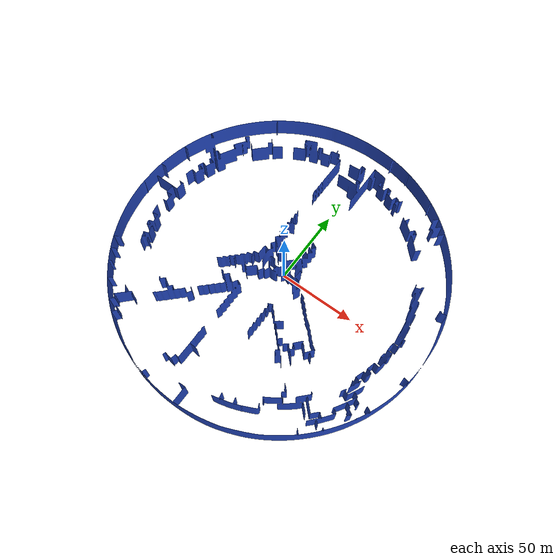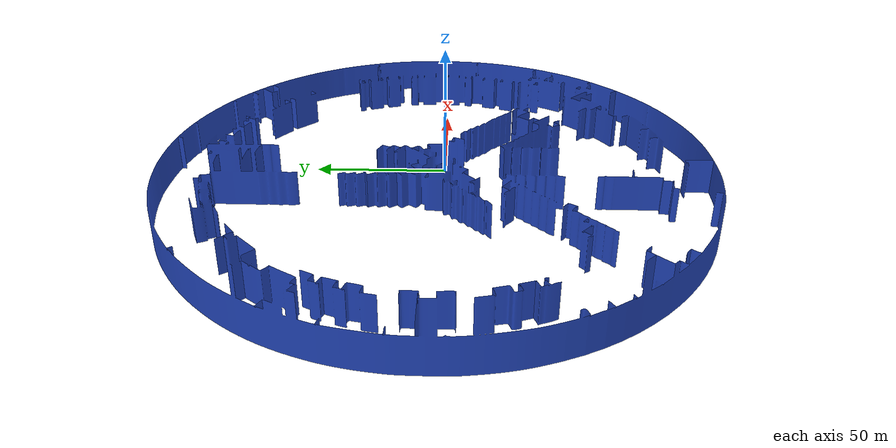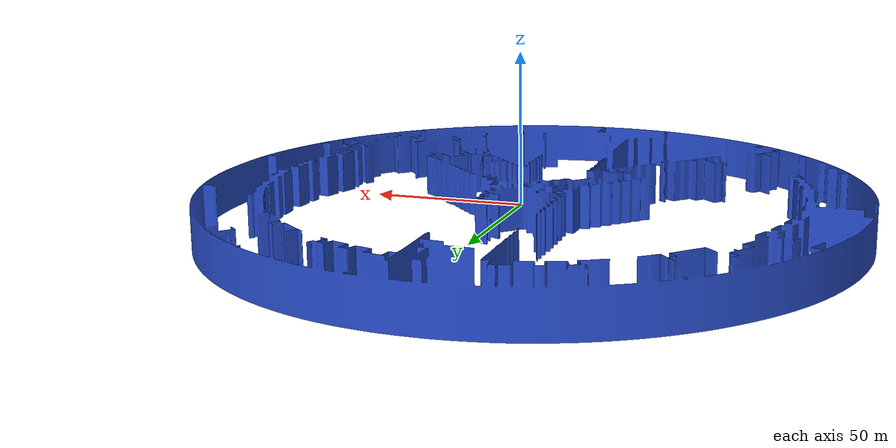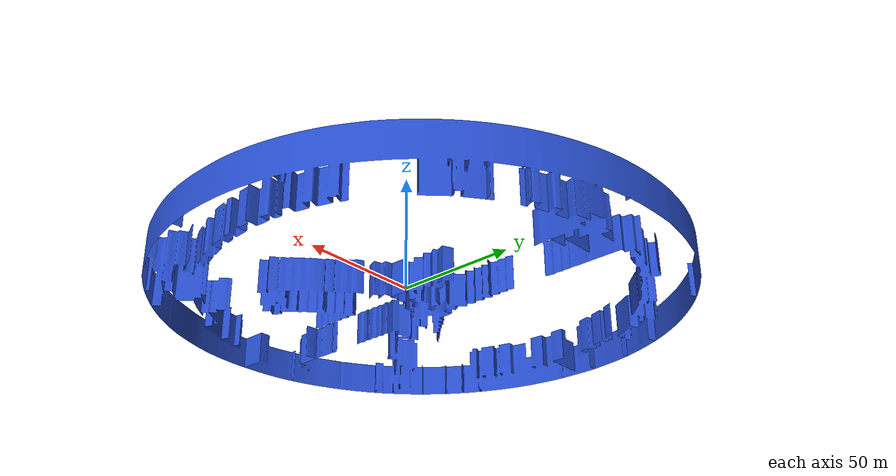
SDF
<?xml version="1.0" ?>
<sdf version="1.5">
  <model name="AEON_Yagoto">
    <static>true</static>
    <pose>0 0 0 0 0 0</pose>
    <link name="link">
      <collision name="collision">
        <geometry>
          <mesh>
            <uri>model://peace_maze/a_maze.stl</uri>
            <scale>7 7 7</scale>
          </mesh>
        </geometry>
      </collision>
      <visual name="visual">
        <geometry>
          <mesh>
            <uri>model://peace_maze/a_maze.stl</uri>
            <scale>7 7 7</scale>
          </mesh>
        </geometry>
        <cast_shadows>false</cast_shadows>

     <material>
          <script>
            <uri>file://media/materials/scripts/gazebo.material</uri>
            <name>Gazebo/Blue</name>
          </script>
        </material>

      </visual>
    </link>
  </model>
</sdf>
